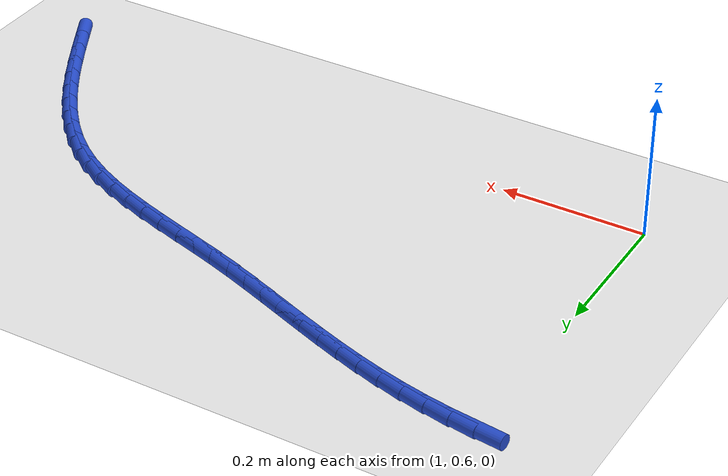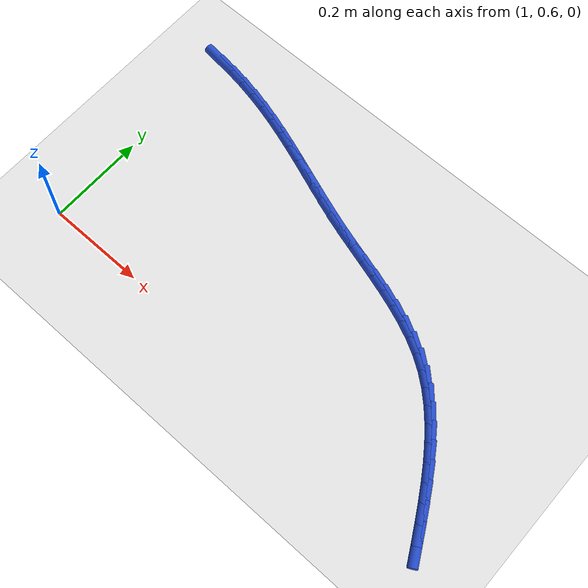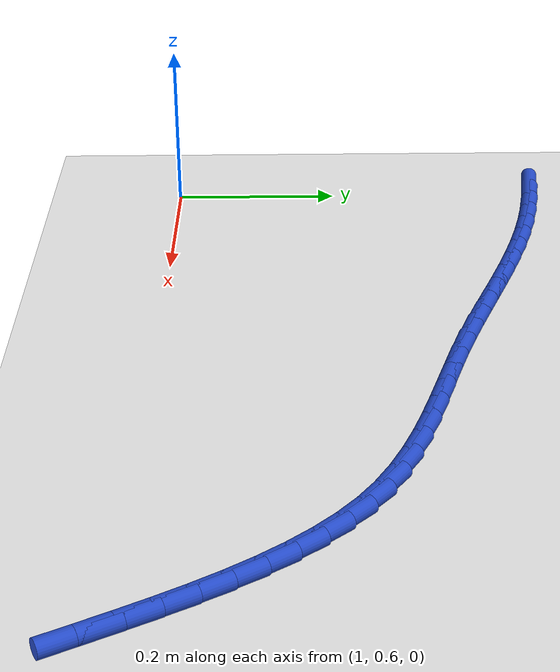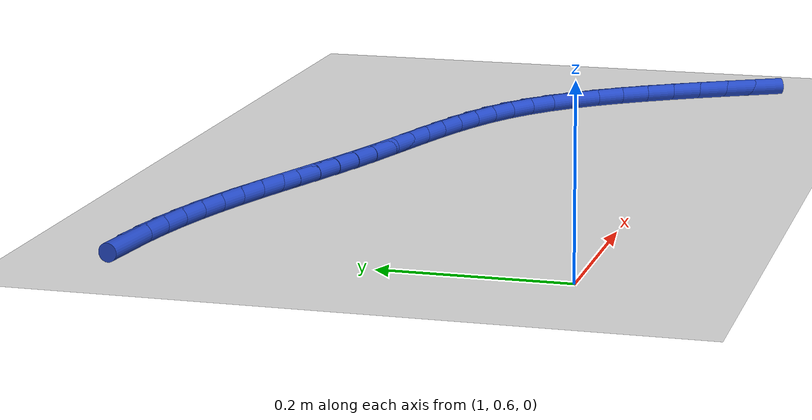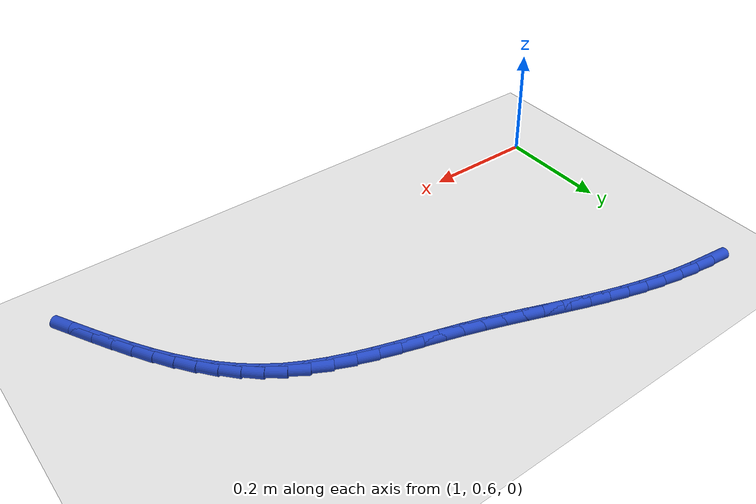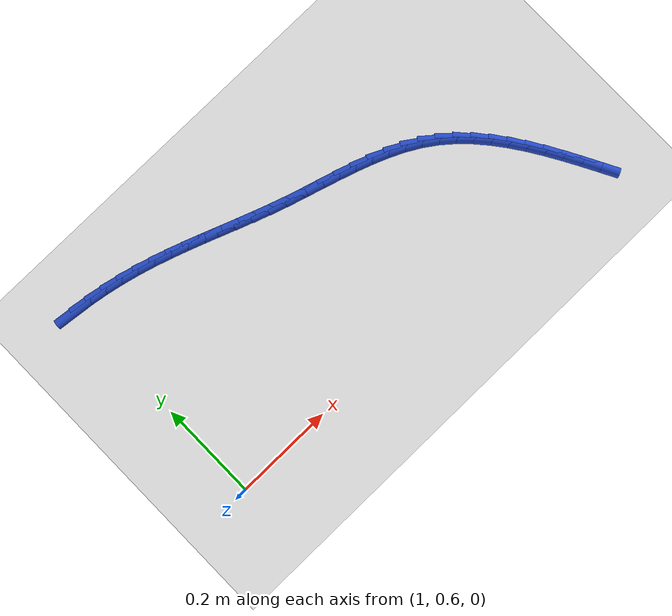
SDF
<sdf version="1.6">
 <world name="default">
  <model name="ground_plane">
   <static>1</static>
   <link name="link">
    <collision name="collision">
     <geometry><plane><normal>0 0 1</normal><size>100 100</size></plane></geometry>
     <surface><friction><ode><mu>100</mu><mu2>50</mu2></ode></friction></surface>
    </collision>
    <visual name="visual">
     <cast_shadows>0</cast_shadows>
     <geometry><plane><normal>0 0 1</normal><size>100 100</size></plane></geometry>
     <material>
      <script><uri>file://media/materials/scripts/gazebo.material</uri><name>Gazebo/WhiteGlow</name></script>
     </material>
    </visual>
   </link>
  </model>
  <model name="line">
   <link name="link_47">
    <pose>0.9992691351569707 1.0596241128417834 0.01 0 1.57 -0.11546811987904403</pose>
    <collision name="collision">
     <geometry><cylinder><radius>0.01</radius><length>0.08</length></cylinder></geometry>
    </collision>
    <visual name="visual">
     <material>
      <script><name>Gazebo/Blue</name><uri>file://media/materials/scripts/gazebo.material</uri></script>
     </material>
     <geometry><cylinder><radius>0.01</radius><length>0.08</length></cylinder></geometry>
    </visual>
   </link>
   <link name="link_48">
    <pose>1.0339580398444692 1.055600753324078 0.01 0 1.57 -0.15974665244853856</pose>
    <collision name="collision">
     <geometry><cylinder><radius>0.01</radius><length>0.08</length></cylinder></geometry>
    </collision>
    <visual name="visual">
     <material>
      <script><name>Gazebo/Blue</name><uri>file://media/materials/scripts/gazebo.material</uri></script>
     </material>
     <geometry><cylinder><radius>0.01</radius><length>0.08</length></cylinder></geometry>
    </visual>
   </link>
   <link name="link_49">
    <pose>1.068449893792141 1.0500434421723535 0.01 0 1.57 -0.20131337771642985</pose>
    <collision name="collision">
     <geometry><cylinder><radius>0.01</radius><length>0.08</length></cylinder></geometry>
    </collision>
    <visual name="visual">
     <material>
      <script><name>Gazebo/Blue</name><uri>file://media/materials/scripts/gazebo.material</uri></script>
     </material>
     <geometry><cylinder><radius>0.01</radius><length>0.08</length></cylinder></geometry>
    </visual>
   </link>
   <link name="link_50">
    <pose>1.1026123789867812 1.0430716391749448 0.01 0 1.57 -0.2405510826231445</pose>
    <collision name="collision">
     <geometry><cylinder><radius>0.01</radius><length>0.08</length></cylinder></geometry>
    </collision>
    <visual name="visual">
     <material>
      <script><name>Gazebo/Blue</name><uri>file://media/materials/scripts/gazebo.material</uri></script>
     </material>
     <geometry><cylinder><radius>0.01</radius><length>0.08</length></cylinder></geometry>
    </visual>
   </link>
   <link name="link_51">
    <pose>1.136313177415184 1.0348048041201874 0.01 0 1.57 -0.27717214346277813</pose>
    <collision name="collision">
     <geometry><cylinder><radius>0.01</radius><length>0.08</length></cylinder></geometry>
    </collision>
    <visual name="visual">
     <material>
      <script><name>Gazebo/Blue</name><uri>file://media/materials/scripts/gazebo.material</uri></script>
     </material>
     <geometry><cylinder><radius>0.01</radius><length>0.08</length></cylinder></geometry>
    </visual>
   </link>
   <link name="link_52">
    <pose>1.1694566323345672 1.0253756529250417 0.01 0 1.57 -0.30807189492269993</pose>
    <collision name="collision">
     <geometry><cylinder><radius>0.01</radius><length>0.08</length></cylinder></geometry>
    </collision>
    <visual name="visual">
     <material>
      <script><name>Gazebo/Blue</name><uri>file://media/materials/scripts/gazebo.material</uri></script>
     </material>
     <geometry><cylinder><radius>0.01</radius><length>0.08</length></cylinder></geometry>
    </visual>
   </link>
   <link name="link_53">
    <pose>1.2021239006334863 1.0149808344856774 0.01 0 1.57 -0.3320006440965367</pose>
    <collision name="collision">
     <geometry><cylinder><radius>0.01</radius><length>0.08</length></cylinder></geometry>
    </collision>
    <visual name="visual">
     <material>
      <script><name>Gazebo/Blue</name><uri>file://media/materials/scripts/gazebo.material</uri></script>
     </material>
     <geometry><cylinder><radius>0.01</radius><length>0.08</length></cylinder></geometry>
    </visual>
   </link>
   <link name="link_54">
    <pose>1.234449374755906 1.0038362468230708 0.01 0 1.57 -0.3487476856497626</pose>
    <collision name="collision">
     <geometry><cylinder><radius>0.01</radius><length>0.08</length></cylinder></geometry>
    </collision>
    <visual name="visual">
     <material>
      <script><name>Gazebo/Blue</name><uri>file://media/materials/scripts/gazebo.material</uri></script>
     </material>
     <geometry><cylinder><radius>0.01</radius><length>0.08</length></cylinder></geometry>
    </visual>
   </link>
   <link name="link_55">
    <pose>1.266567457854092 0.9921577918301479 0.01 0 1.57 -0.35820996493097723</pose>
    <collision name="collision">
     <geometry><cylinder><radius>0.01</radius><length>0.08</length></cylinder></geometry>
    </collision>
    <visual name="visual">
     <material>
      <script><name>Gazebo/Blue</name><uri>file://media/materials/scripts/gazebo.material</uri></script>
     </material>
     <geometry><cylinder><radius>0.01</radius><length>0.08</length></cylinder></geometry>
    </visual>
   </link>
   <link name="link_56">
    <pose>1.298612553080311 0.980161371399836 0.01 0 1.57 -0.3603682954343708</pose>
    <collision name="collision">
     <geometry><cylinder><radius>0.01</radius><length>0.08</length></cylinder></geometry>
    </collision>
    <visual name="visual">
     <material>
      <script><name>Gazebo/Blue</name><uri>file://media/materials/scripts/gazebo.material</uri></script>
     </material>
     <geometry><cylinder><radius>0.01</radius><length>0.08</length></cylinder></geometry>
    </visual>
   </link>
   <link name="link_57">
    <pose>1.3307190635868293 0.9680628874250607 0.01 0 1.57 -0.3552723225432319</pose>
    <collision name="collision">
     <geometry><cylinder><radius>0.01</radius><length>0.08</length></cylinder></geometry>
    </collision>
    <visual name="visual">
     <material>
      <script><name>Gazebo/Blue</name><uri>file://media/materials/scripts/gazebo.material</uri></script>
     </material>
     <geometry><cylinder><radius>0.01</radius><length>0.08</length></cylinder></geometry>
    </visual>
   </link>
   <link name="link_58">
    <pose>1.3630213925259138 0.9560782417987496 0.01 0 1.57 -0.34303543803610054</pose>
    <collision name="collision">
     <geometry><cylinder><radius>0.01</radius><length>0.08</length></cylinder></geometry>
    </collision>
    <visual name="visual">
     <material>
      <script><name>Gazebo/Blue</name><uri>file://media/materials/scripts/gazebo.material</uri></script>
     </material>
     <geometry><cylinder><radius>0.01</radius><length>0.08</length></cylinder></geometry>
    </visual>
   </link>
   <link name="link_59">
    <pose>1.3956539430498296 0.9444233364138287 0.01 0 1.57 -0.32384153242769537</pose>
    <collision name="collision">
     <geometry><cylinder><radius>0.01</radius><length>0.08</length></cylinder></geometry>
    </collision>
    <visual name="visual">
     <material>
      <script><name>Gazebo/Blue</name><uri>file://media/materials/scripts/gazebo.material</uri></script>
     </material>
     <geometry><cylinder><radius>0.01</radius><length>0.08</length></cylinder></geometry>
    </visual>
   </link>
   <link name="link_60">
    <pose>1.4287510728277324 0.9333140112194862 0.01 0 1.57 -0.3021883758827398</pose>
    <collision name="collision">
     <geometry><cylinder><radius>0.01</radius><length>0.08</length></cylinder></geometry>
    </collision>
    <visual name="visual">
     <material>
      <script><name>Gazebo/Blue</name><uri>file://media/materials/scripts/gazebo.material</uri></script>
     </material>
     <geometry><cylinder><radius>0.01</radius><length>0.08</length></cylinder></geometry>
    </visual>
   </link>
   <link name="link_61">
    <pose>1.4623537142717886 0.9228388697152982 0.01 0 1.57 -0.2911663075131773</pose>
    <collision name="collision">
     <geometry><cylinder><radius>0.01</radius><length>0.08</length></cylinder></geometry>
    </collision>
    <visual name="visual">
     <material>
      <script><name>Gazebo/Blue</name><uri>file://media/materials/scripts/gazebo.material</uri></script>
     </material>
     <geometry><cylinder><radius>0.01</radius><length>0.08</length></cylinder></geometry>
    </visual>
   </link>
   <link name="link_62">
    <pose>1.496212981181234 0.9126918095950457 0.01 0 1.57 -0.2930324917197571</pose>
    <collision name="collision">
     <geometry><cylinder><radius>0.01</radius><length>0.08</length></cylinder></geometry>
    </collision>
    <visual name="visual">
     <material>
      <script><name>Gazebo/Blue</name><uri>file://media/materials/scripts/gazebo.material</uri></script>
     </material>
     <geometry><cylinder><radius>0.01</radius><length>0.08</length></cylinder></geometry>
    </visual>
   </link>
   <link name="link_63">
    <pose>1.530023955913463 0.9024904189767451 0.01 0 1.57 -0.30784868390508313</pose>
    <collision name="collision">
     <geometry><cylinder><radius>0.01</radius><length>0.08</length></cylinder></geometry>
    </collision>
    <visual name="visual">
     <material>
      <script><name>Gazebo/Blue</name><uri>file://media/materials/scripts/gazebo.material</uri></script>
     </material>
     <geometry><cylinder><radius>0.01</radius><length>0.08</length></cylinder></geometry>
    </visual>
   </link>
   <link name="link_64">
    <pose>1.5634817208258716 0.8918522859784112 0.01 0 1.57 -0.33606123515005626</pose>
    <collision name="collision">
     <geometry><cylinder><radius>0.01</radius><length>0.08</length></cylinder></geometry>
    </collision>
    <visual name="visual">
     <material>
      <script><name>Gazebo/Blue</name><uri>file://media/materials/scripts/gazebo.material</uri></script>
     </material>
     <geometry><cylinder><radius>0.01</radius><length>0.08</length></cylinder></geometry>
    </visual>
   </link>
   <link name="link_65">
    <pose>1.5962813582758537 0.8803949987180599 0.01 0 1.57 -0.37845263314272626</pose>
    <collision name="collision">
     <geometry><cylinder><radius>0.01</radius><length>0.08</length></cylinder></geometry>
    </collision>
    <visual name="visual">
     <material>
      <script><name>Gazebo/Blue</name><uri>file://media/materials/scripts/gazebo.material</uri></script>
     </material>
     <geometry><cylinder><radius>0.01</radius><length>0.08</length></cylinder></geometry>
    </visual>
   </link>
   <link name="link_66">
    <pose>1.6281179506208043 0.8677361453137069 0.01 0 1.57 -0.436021789033788</pose>
    <collision name="collision">
     <geometry><cylinder><radius>0.01</radius><length>0.08</length></cylinder></geometry>
    </collision>
    <visual name="visual">
     <material>
      <script><name>Gazebo/Blue</name><uri>file://media/materials/scripts/gazebo.material</uri></script>
     </material>
     <geometry><cylinder><radius>0.01</radius><length>0.08</length></cylinder></geometry>
    </visual>
   </link>
   <link name="link_67">
    <pose>1.6586865802181174 0.853493313883367 0.01 0 1.57 -0.5097424317279889</pose>
    <collision name="collision">
     <geometry><cylinder><radius>0.01</radius><length>0.08</length></cylinder></geometry>
    </collision>
    <visual name="visual">
     <material>
      <script><name>Gazebo/Blue</name><uri>file://media/materials/scripts/gazebo.material</uri></script>
     </material>
     <geometry><cylinder><radius>0.01</radius><length>0.08</length></cylinder></geometry>
    </visual>
   </link>
   <link name="link_68">
    <pose>1.6876823294251884 0.8372840925450558 0.01 0 1.57 -0.5996519968335257</pose>
    <collision name="collision">
     <geometry><cylinder><radius>0.01</radius><length>0.08</length></cylinder></geometry>
    </collision>
    <visual name="visual">
     <material>
      <script><name>Gazebo/Blue</name><uri>file://media/materials/scripts/gazebo.material</uri></script>
     </material>
     <geometry><cylinder><radius>0.01</radius><length>0.08</length></cylinder></geometry>
    </visual>
   </link>
   <link name="link_69">
    <pose>1.7148104996016462 0.8187385688252817 0.01 0 1.57 -0.6935753661152109</pose>
    <collision name="collision">
     <geometry><cylinder><radius>0.01</radius><length>0.08</length></cylinder></geometry>
    </collision>
    <visual name="visual">
     <material>
      <script><name>Gazebo/Blue</name><uri>file://media/materials/scripts/gazebo.material</uri></script>
     </material>
     <geometry><cylinder><radius>0.01</radius><length>0.08</length></cylinder></geometry>
    </visual>
   </link>
   <link name="link_70">
    <pose>1.7400177993070385 0.7977821083154447 0.01 0 1.57 -0.7781958988368085</pose>
    <collision name="collision">
     <geometry><cylinder><radius>0.01</radius><length>0.08</length></cylinder></geometry>
    </collision>
    <visual name="visual">
     <material>
      <script><name>Gazebo/Blue</name><uri>file://media/materials/scripts/gazebo.material</uri></script>
     </material>
     <geometry><cylinder><radius>0.01</radius><length>0.08</length></cylinder></geometry>
    </visual>
   </link>
   <link name="link_71">
    <pose>1.763495937218761 0.7746397493620243 0.01 0 1.57 -0.8520112085431466</pose>
    <collision name="collision">
     <geometry><cylinder><radius>0.01</radius><length>0.08</length></cylinder></geometry>
    </collision>
    <visual name="visual">
     <material>
      <script><name>Gazebo/Blue</name><uri>file://media/materials/scripts/gazebo.material</uri></script>
     </material>
     <geometry><cylinder><radius>0.01</radius><length>0.08</length></cylinder></geometry>
    </visual>
   </link>
   <link name="link_72">
    <pose>1.7854475596491923 0.7495499087181665 0.01 0 1.57 -0.9147910774339232</pose>
    <collision name="collision">
     <geometry><cylinder><radius>0.01</radius><length>0.08</length></cylinder></geometry>
    </collision>
    <visual name="visual">
     <material>
      <script><name>Gazebo/Blue</name><uri>file://media/materials/scripts/gazebo.material</uri></script>
     </material>
     <geometry><cylinder><radius>0.01</radius><length>0.08</length></cylinder></geometry>
    </visual>
   </link>
   <link name="link_73">
    <pose>1.806075312910712 0.722751003137018 0.01 0 1.57 -0.9668004484924682</pose>
    <collision name="collision">
     <geometry><cylinder><radius>0.01</radius><length>0.08</length></cylinder></geometry>
    </collision>
    <visual name="visual">
     <material>
      <script><name>Gazebo/Blue</name><uri>file://media/materials/scripts/gazebo.material</uri></script>
     </material>
     <geometry><cylinder><radius>0.01</radius><length>0.08</length></cylinder></geometry>
    </visual>
   </link>
   <link name="link_74">
    <pose>1.8255818433156985 0.6944814493717238 0.01 0 1.57 -1.0085651982869297</pose>
    <collision name="collision">
     <geometry><cylinder><radius>0.01</radius><length>0.08</length></cylinder></geometry>
    </collision>
    <visual name="visual">
     <material>
      <script><name>Gazebo/Blue</name><uri>file://media/materials/scripts/gazebo.material</uri></script>
     </material>
     <geometry><cylinder><radius>0.01</radius><length>0.08</length></cylinder></geometry>
    </visual>
   </link>
   <link name="link_75">
    <pose>1.8441697971765318 0.6649796641754306 0.01 0 1.57 -1.0406954445964798</pose>
    <collision name="collision">
     <geometry><cylinder><radius>0.01</radius><length>0.08</length></cylinder></geometry>
    </collision>
    <visual name="visual">
     <material>
      <script><name>Gazebo/Blue</name><uri>file://media/materials/scripts/gazebo.material</uri></script>
     </material>
     <geometry><cylinder><radius>0.01</radius><length>0.08</length></cylinder></geometry>
    </visual>
   </link>
   <link name="link_76">
    <pose>1.862041820805591 0.6344840643012849 0.01 0 1.57 -1.0637693654418112</pose>
    <collision name="collision">
     <geometry><cylinder><radius>0.01</radius><length>0.08</length></cylinder></geometry>
    </collision>
    <visual name="visual">
     <material>
      <script><name>Gazebo/Blue</name><uri>file://media/materials/scripts/gazebo.material</uri></script>
     </material>
     <geometry><cylinder><radius>0.01</radius><length>0.08</length></cylinder></geometry>
    </visual>
   </link>
   <link name="link_77">
    <pose>1.8794005605152555 0.6032330665024317 0.01 0 1.57 -1.0782648698435238</pose>
    <collision name="collision">
     <geometry><cylinder><radius>0.01</radius><length>0.08</length></cylinder></geometry>
    </collision>
    <visual name="visual">
     <material>
      <script><name>Gazebo/Blue</name><uri>file://media/materials/scripts/gazebo.material</uri></script>
     </material>
     <geometry><cylinder><radius>0.01</radius><length>0.08</length></cylinder></geometry>
    </visual>
   </link>
   <link name="link_78">
    <pose>1.8964486626179038 0.5714650875320177 0.01 0 1.57 -1.0845238505308503</pose>
    <collision name="collision">
     <geometry><cylinder><radius>0.01</radius><length>0.08</length></cylinder></geometry>
    </collision>
    <visual name="visual">
     <material>
      <script><name>Gazebo/Blue</name><uri>file://media/materials/scripts/gazebo.material</uri></script>
     </material>
     <geometry><cylinder><radius>0.01</radius><length>0.08</length></cylinder></geometry>
    </visual>
   </link>
  </model>
 </world>
</sdf>
